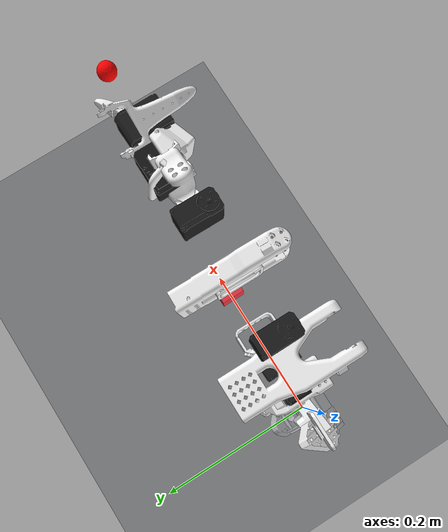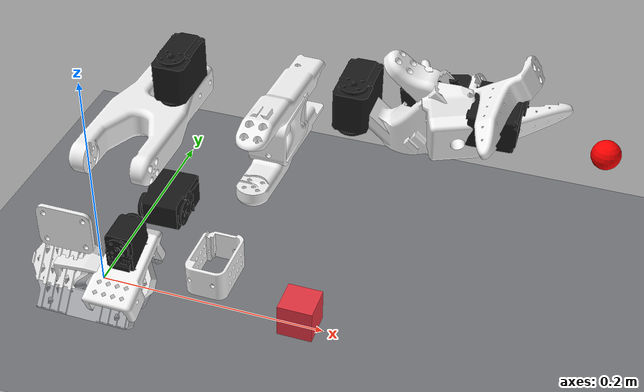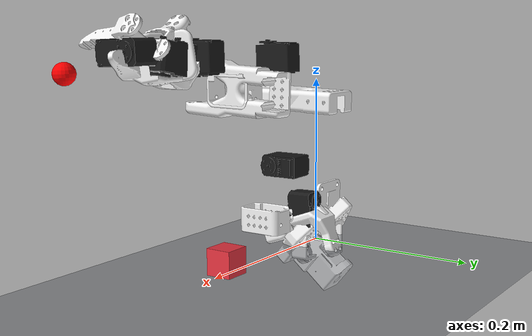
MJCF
<mujoco model="so101_scene">
    <include file="so101.xml" />

    <visual>
        <headlight diffuse="0.6 0.6 0.6" ambient="0.3 0.3 0.3" specular="0.1 0.1 0.1" />
        <rgba haze="0.15 0.25 0.35 1" />
        <global azimuth="140" elevation="-20" />
    </visual>

    <asset>
        <texture type="skybox" builtin="gradient" rgb1="0.1 0.15 0.2" rgb2="0.02 0.03 0.05" width="512" height="512" />
        <texture type="2d" name="groundplane" builtin="checker" mark="edge" rgb1="0.15 0.17 0.22" rgb2="0.1 0.12 0.15" markrgb="0.8 0.8 0.8" width="300" height="300" />
        <material name="groundplane" texture="groundplane" texuniform="true" texrepeat="5 5" reflectance="0.2" />
    </asset>

    <worldbody>
        <!-- Directional light and ground plane -->
        <light pos="0 0 3.5" dir="0 0 -1" directional="true" castshadow="true" />
        <geom name="floor" size="2 2 0.05" pos="0 0 0" type="plane" material="groundplane" />

        <!-- Target manipulation object to pick -->
        <body name="target" pos="0.18 0.0 0.015">
            <freejoint name="target_joint"/>
            <geom type="box" size="0.015 0.015 0.015" rgba="0.9 0.2 0.25 1" density="500" contype="1" conaffinity="1"/>
        </body>
    </worldbody>
</mujoco>

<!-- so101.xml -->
<mujoco model="so101_new_calib">
  <compiler angle="radian" meshdir="meshes" autolimits="true" />
  <default>
    <default class="so101_new_calib">
      <joint damping="1" frictionloss="0.1" armature="0.005" />
      <position kp="50" />
      <default class="visual">
        <geom type="mesh" contype="0" conaffinity="0" group="2" />
      </default>
      <default class="collision">
        <geom group="3" />
      </default>
    </default>
  </default>

  <default>
    <default class="sts3215">
      <geom contype="0" conaffinity="0" />
      <joint damping="0.60" frictionloss="0.052" armature="0.028" />

      <position kp="998.22" kv="2.731" forcerange="-2.94 2.94" />
    </default>
    <default class="backlash">

      <joint damping="0.01" frictionloss="0" armature="0.01" limited="true" range="-0.008726646259971648 0.008726646259971648" />
    </default>
  </default>
  <worldbody>

    <body name="base" pos="0 0 0" quat="1 0 0 0" childclass="so101_new_calib">
      <inertial pos="0.0137179 -5.19711e-05 0.0334843" mass="0.147" fullinertia="0.000114686 0.000136117 0.000130364 -4.59787e-07 4.97151e-06 9.75275e-08" />

      <geom type="mesh" class="visual" pos="-0.00636471 -9.94414e-05 -0.0024" quat="0.5 0.5 0.5 0.5" mesh="base_motor_holder_so101_v1" material="base_motor_holder_so101_v1_material" />

      <geom type="mesh" class="visual" pos="-0.00636471 -8.97657e-09 -0.0024" quat="0.5 0.5 0.5 0.5" mesh="base_so101_v2" material="base_so101_v2_material" />

      <geom type="mesh" class="visual" pos="0.0263353 -8.97657e-09 0.0437" quat="1 -2.85511e-16 -9.64433e-17 6.12908e-16" mesh="sts3215_03a_v1" material="sts3215_03a_v1_material" />

      <geom type="mesh" class="visual" pos="-0.0309827 -0.000199441 0.0474" quat="0.5 0.5 0.5 0.5" mesh="waveshare_mounting_plate_so101_v2" material="waveshare_mounting_plate_so101_v2_material" />

      <site group="3" name="baseframe" pos="8.67362e-19 9.55596e-18 3.46945e-18" quat="1 -8.17396e-19 3.78392e-17 2.22045e-16" />

      <body name="shoulder" pos="0.0388353 -8.97657e-09 0.0624" quat="3.56167e-16 1.22818e-15 -1 -4.14635e-16">

        <joint axis="0 0 1" name="shoulder_pan" type="hinge" range="-1.524382 1.524382" class="sts3215" />
        <inertial pos="-0.0307604 -1.66727e-05 -0.0252713" mass="0.100006" fullinertia="8.3759e-05 8.10403e-05 2.39783e-05 7.55525e-08 -1.16342e-06 1.54663e-07" />

        <geom type="mesh" class="visual" pos="-0.0303992 0.000422241 -0.0417" quat="0.5 0.5 0.5 -0.5" mesh="sts3215_03a_v1" material="sts3215_03a_v1_material" />
        <geom type="mesh" class="collision" pos="-0.0303992 0.000422241 -0.0417" quat="0.5 0.5 0.5 -0.5" mesh="sts3215_03a_v1" material="sts3215_03a_v1_material" />

        <geom type="mesh" class="visual" pos="-0.0675992 -0.000177759 0.0158499" quat="0.5 0.5 -0.5 0.5" mesh="motor_holder_so101_base_v1" material="motor_holder_so101_base_v1_material" />
        <geom type="mesh" class="collision" pos="-0.0675992 -0.000177759 0.0158499" quat="0.5 0.5 -0.5 0.5" mesh="motor_holder_so101_base_v1" material="motor_holder_so101_base_v1_material" />

        <geom type="mesh" class="visual" pos="0.0122008 2.22413e-05 0.0464" quat="0.707107 -0.707107 -0 8.3163e-34" mesh="rotation_pitch_so101_v1" material="rotation_pitch_so101_v1_material" />
        <geom type="mesh" class="collision" pos="0.0122008 2.22413e-05 0.0464" quat="0.707107 -0.707107 -0 8.3163e-34" mesh="rotation_pitch_so101_v1" material="rotation_pitch_so101_v1_material" />

        <body name="upper_arm" pos="-0.0303992 -0.0182778 -0.0542" quat="0.5 -0.5 -0.5 -0.5">

          <joint axis="0 0 1" name="shoulder_lift" type="hinge" range="-1.839692 1.839692" class="sts3215" />
          <inertial pos="-0.0898471 -0.00838224 0.0184089" mass="0.103" fullinertia="4.08002e-05 0.000147318 0.000142487 -1.97819e-05 -4.03016e-08 8.97326e-09" />

          <geom type="mesh" class="visual" pos="-0.11257 -0.0155 0.0187" quat="4.56308e-16 -0.707107 0.707107 -1.37383e-16" mesh="sts3215_03a_v1" material="sts3215_03a_v1_material" />
          <geom type="mesh" class="collision" pos="-0.11257 -0.0155 0.0187" quat="4.56308e-16 -0.707107 0.707107 -1.37383e-16" mesh="sts3215_03a_v1" material="sts3215_03a_v1_material" />

          <geom type="mesh" class="visual" pos="-0.065085 0.012 0.0182" quat="0 1 0 0" mesh="upper_arm_so101_v1" material="upper_arm_so101_v1_material" />
          <geom type="mesh" class="collision" pos="-0.065085 0.012 0.0182" quat="0 1 0 0" mesh="upper_arm_so101_v1" material="upper_arm_so101_v1_material" />

          <body name="lower_arm" pos="-0.11257 -0.028 1.73763e-16" quat="0.707107 -5.98613e-17 -2.58051e-17 0.707107">

            <joint axis="0 0 1" name="elbow_flex" type="hinge" range="-1.705436 1.705436" class="sts3215" />
            <inertial pos="-0.0980701 0.00324376 0.0182831" mass="0.104" fullinertia="2.87438e-05 0.000159844 0.00014529 7.41152e-06 1.26409e-06 -4.90188e-08" />

            <geom type="mesh" class="visual" pos="-0.0648499 -0.032 0.0182" quat="0 1 0 0" mesh="under_arm_so101_v1" material="under_arm_so101_v1_material" />
            <geom type="mesh" class="collision" pos="-0.0648499 -0.032 0.0182" quat="0 1 0 0" mesh="under_arm_so101_v1" material="under_arm_so101_v1_material" />

            <geom type="mesh" class="visual" pos="-0.0648499 -0.032 0.018" quat="3.92687e-16 -1 -1.9186e-15 -6.38378e-16" mesh="motor_holder_so101_wrist_v1" material="motor_holder_so101_wrist_v1_material" />
            <geom type="mesh" class="collision" pos="-0.0648499 -0.032 0.018" quat="3.92687e-16 -1 -1.9186e-15 -6.38378e-16" mesh="motor_holder_so101_wrist_v1" material="motor_holder_so101_wrist_v1_material" />

            <geom type="mesh" class="visual" pos="-0.1224 0.0052 0.0187" quat="7.21645e-16 1.56949e-15 1 -3.33067e-16" mesh="sts3215_03a_v1" material="sts3215_03a_v1_material" />
            <geom type="mesh" class="collision" pos="-0.1224 0.0052 0.0187" quat="7.21645e-16 1.56949e-15 1 -3.33067e-16" mesh="sts3215_03a_v1" material="sts3215_03a_v1_material" />

            <body name="wrist" pos="-0.1349 0.0052 3.62355e-17" quat="0.707107 9.58722e-16 -7.51313e-16 -0.707107">

              <joint axis="0 0 1" name="wrist_flex" type="hinge" range="-1.784455 1.784455" class="sts3215" />
              <inertial pos="-0.000103312 -0.0386143 0.0281156" mass="0.079" fullinertia="3.68263e-05 2.5391e-05 2.1e-05 1.7893e-08 -5.28128e-08 3.6412e-06" />

              <geom type="mesh" class="visual" pos="8.32667e-17 -0.0424 0.0306" quat="0.5 0.5 0.5 -0.5" mesh="sts3215_03a_no_horn_v1" material="sts3215_03a_no_horn_v1_material" />
              <geom type="mesh" class="collision" pos="8.32667e-17 -0.0424 0.0306" quat="0.5 0.5 0.5 -0.5" mesh="sts3215_03a_no_horn_v1" material="sts3215_03a_no_horn_v1_material" />

              <geom type="mesh" class="visual" pos="0 -0.028 0.0181" quat="0.5 -0.5 -0.5 -0.5" mesh="wrist_roll_pitch_so101_v2" material="wrist_roll_pitch_so101_v2_material" />
              <geom type="mesh" class="collision" pos="0 -0.028 0.0181" quat="0.5 -0.5 -0.5 -0.5" mesh="wrist_roll_pitch_so101_v2" material="wrist_roll_pitch_so101_v2_material" />

              <body name="gripper" pos="5.55112e-17 -0.0611 0.0181" quat="0.0172091 -0.0172091 0.706897 0.706897">

                <joint axis="0 0 1" name="wrist_roll" type="hinge" range="-2.932153 2.932153" class="sts3215" />
                <inertial pos="0.000213627 0.000245138 -0.025187" mass="0.087" fullinertia="2.75087e-05 4.33657e-05 3.45059e-05 -3.35241e-07 -5.7352e-06 -5.17847e-08" />

                <geom type="mesh" class="visual" pos="0.0077 0.0001 -0.0234" quat="0.707107 -0.707107 1.66015e-15 6.45094e-15" mesh="sts3215_03a_v1" material="sts3215_03a_v1_material" />
                <geom type="mesh" class="collision" pos="0.0077 0.0001 -0.0234" quat="0.707107 -0.707107 1.66015e-15 6.45094e-15" mesh="sts3215_03a_v1" material="sts3215_03a_v1_material" />

                <geom type="mesh" class="visual" pos="8.32667e-17 -0.000218214 0.000949706" quat="0 1 0 0" mesh="wrist_roll_follower_so101_v1" material="wrist_roll_follower_so101_v1_material" />
                <geom type="mesh" class="collision" pos="8.32667e-17 -0.000218214 0.000949706" quat="0 1 0 0" mesh="wrist_roll_follower_so101_v1" material="wrist_roll_follower_so101_v1_material" />

                <site name="gripperframe" pos="-0.0079 -0.000218121 -0.0981274" quat="0.707107 -0 0.707107 -2.37788e-17" size="0.01" type="sphere" rgba="1 0 0 1" />

                <body name="moving_jaw_so101_v1" pos="0.0202 0.0188 -0.0234" quat="0.679118 0.679118 -0.196975 0.196975">
                  <joint axis="0 0 1" name="gripper" type="hinge" range="-1.129286 1.129286" class="sts3215" />
                  <inertial pos="-0.00157495 -0.0300244 0.0192755" mass="0.012" fullinertia="6.61427e-06 1.89032e-06 5.28738e-06 -3.19807e-07 -5.90717e-09 -1.09945e-07" />

                  <geom type="mesh" class="visual" pos="-5.55112e-17 -5.55112e-17 0.0189" quat="1 -0 3.00524e-16 -2.00834e-17" mesh="moving_jaw_so101_v1" material="moving_jaw_so101_v1_material" />
                  <geom type="mesh" class="collision" pos="-5.55112e-17 -5.55112e-17 0.0189" quat="1 -0 3.00524e-16 -2.00834e-17" mesh="moving_jaw_so101_v1" material="moving_jaw_so101_v1_material" />
                </body>
              </body>
            </body>
          </body>
        </body>
      </body>
    </body>
  </worldbody>
  <asset>
    <mesh file="waveshare_mounting_plate_so101_v2.stl" />
    <mesh file="sts3215_03a_v1.stl" />
    <mesh file="motor_holder_so101_base_v1.stl" />
    <mesh file="wrist_roll_follower_so101_v1.stl" />
    <mesh file="moving_jaw_so101_v1.stl" />
    <mesh file="base_motor_holder_so101_v1.stl" />
    <mesh file="upper_arm_so101_v1.stl" />
    <mesh file="wrist_roll_pitch_so101_v2.stl" />
    <mesh file="under_arm_so101_v1.stl" />
    <mesh file="rotation_pitch_so101_v1.stl" />
    <mesh file="motor_holder_so101_wrist_v1.stl" />
    <mesh file="sts3215_03a_no_horn_v1.stl" />
    <mesh file="base_so101_v2.stl" />
    <material name="base_motor_holder_so101_v1_material" rgba="0.95 0.95 0.95 1" />
    <material name="base_so101_v2_material" rgba="0.95 0.95 0.95 1" />
    <material name="sts3215_03a_v1_material" rgba="0.1 0.1 0.1 1" />
    <material name="waveshare_mounting_plate_so101_v2_material" rgba="0.95 0.95 0.95 1" />
    <material name="motor_holder_so101_base_v1_material" rgba="0.95 0.95 0.95 1" />
    <material name="rotation_pitch_so101_v1_material" rgba="0.95 0.95 0.95 1" />
    <material name="upper_arm_so101_v1_material" rgba="0.95 0.95 0.95 1" />
    <material name="under_arm_so101_v1_material" rgba="0.95 0.95 0.95 1" />
    <material name="motor_holder_so101_wrist_v1_material" rgba="0.95 0.95 0.95 1" />
    <material name="sts3215_03a_no_horn_v1_material" rgba="0.1 0.1 0.1 1.0" />
    <material name="wrist_roll_pitch_so101_v2_material" rgba="0.95 0.95 0.95 1" />
    <material name="wrist_roll_follower_so101_v1_material" rgba="0.95 0.95 0.95 1" />
    <material name="moving_jaw_so101_v1_material" rgba="0.95 0.95 0.95 1" />
  </asset>
  <actuator>
    <position class="sts3215" name="shoulder_pan" joint="shoulder_pan" forcerange="-3.35 3.35" ctrlrange="-1.524 1.524" />
    <position class="sts3215" name="shoulder_lift" joint="shoulder_lift" forcerange="-3.35 3.35" ctrlrange="-1.840 1.840" />
    <position class="sts3215" name="elbow_flex" joint="elbow_flex" forcerange="-3.35 3.35" ctrlrange="-1.705 1.705" />
    <position class="sts3215" name="wrist_flex" joint="wrist_flex" forcerange="-3.35 3.35" ctrlrange="-1.784 1.784" />
    <position class="sts3215" name="wrist_roll" joint="wrist_roll" forcerange="-3.35 3.35" ctrlrange="-2.932 2.932" />
    <position class="sts3215" name="gripper" joint="gripper" forcerange="-3.35 3.35" ctrlrange="-1.129 1.129" />
  </actuator>
  <equality />
</mujoco>
